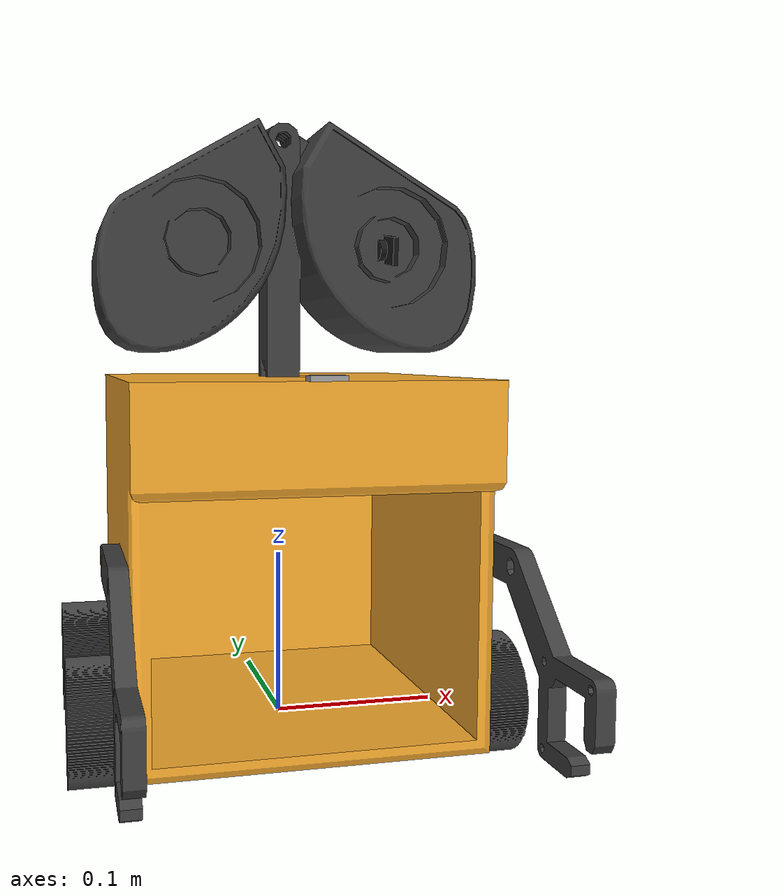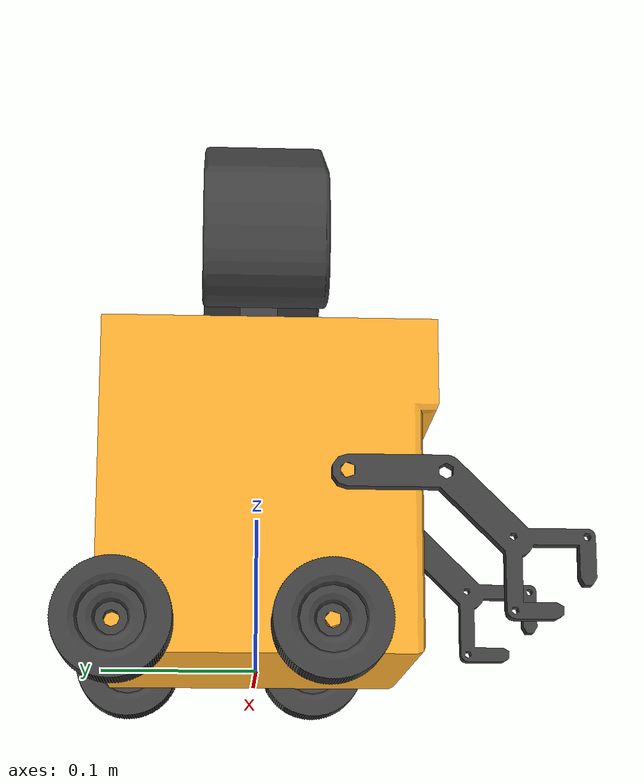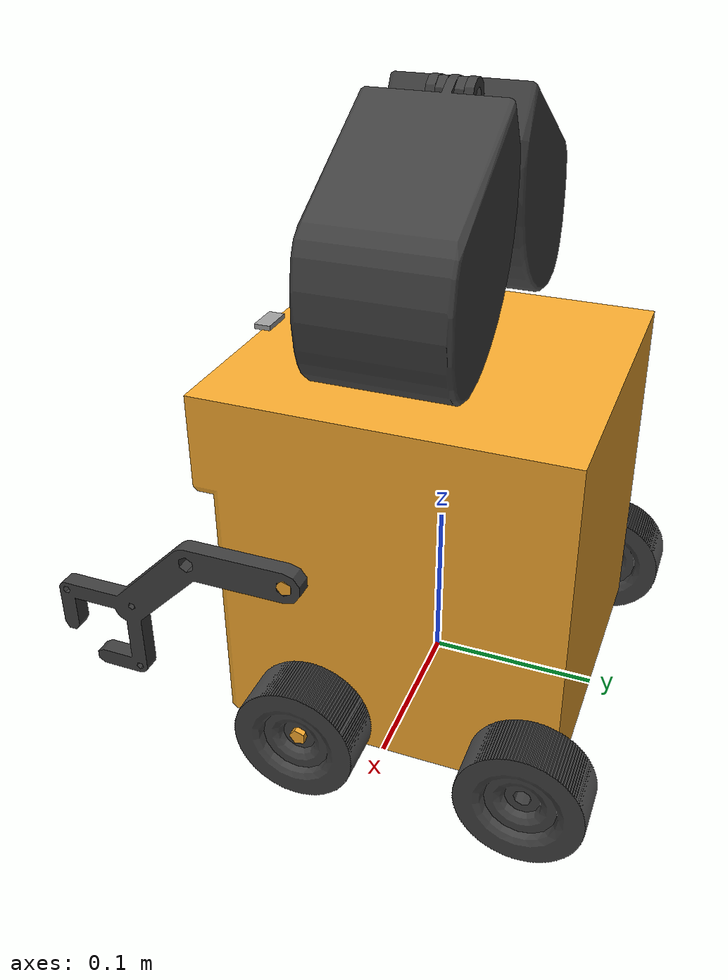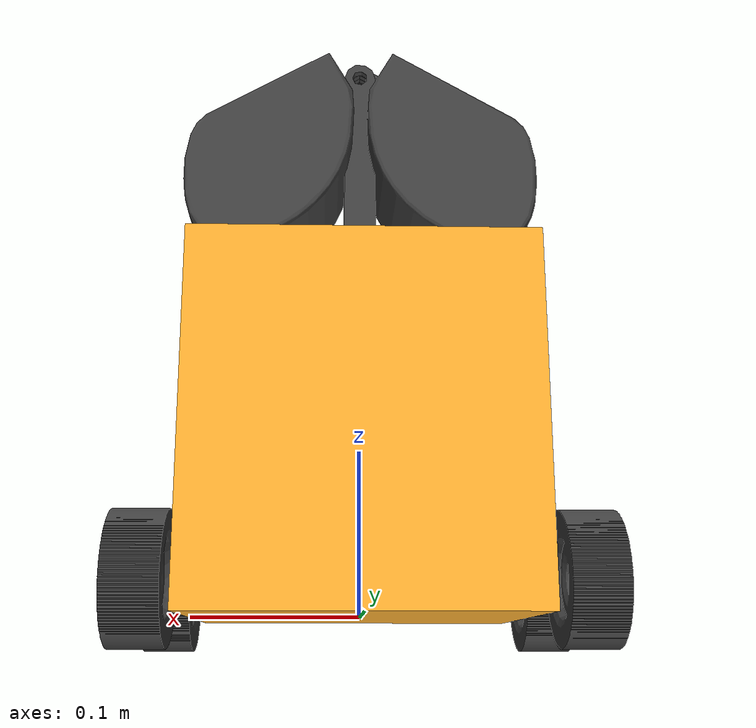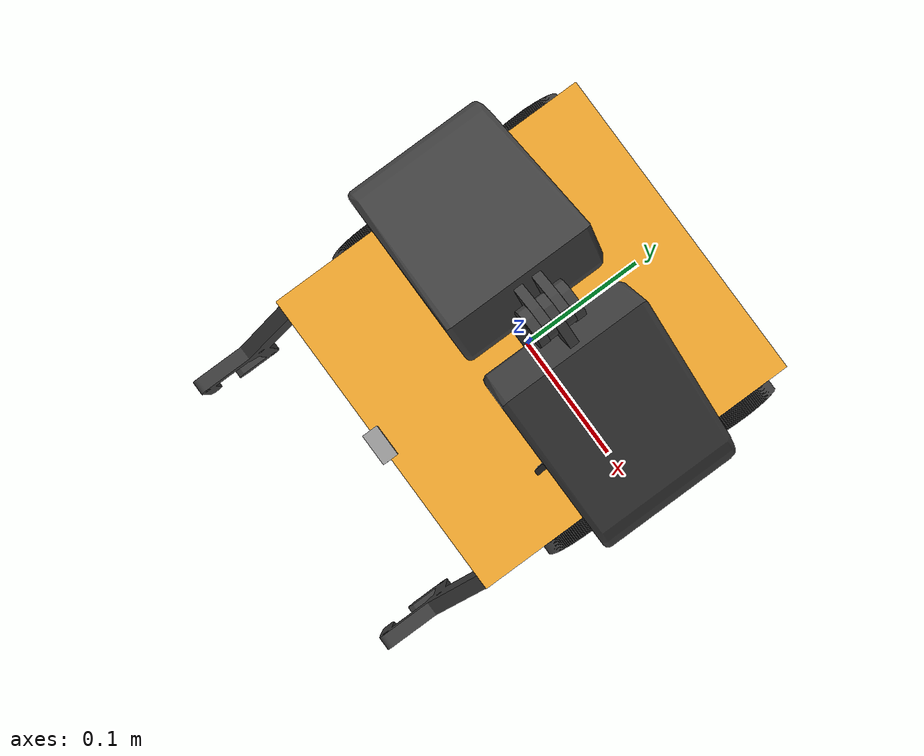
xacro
<?xml version="1.0" ?>
<robot name="sim" xmlns:xacro="http://www.ros.org/wiki/xacro">

<xacro:include filename="$(find sim_description)/urdf/materials.xacro" />
<xacro:include filename="$(find sim_description)/urdf/sensors.xacro" />
<xacro:include filename="$(find sim_description)/urdf/sim.gazebo" />
<link name="base_link">
  <inertial>
    <origin xyz="0 0.007854232303995057 0.12120278975860416" rpy="-0.3 0 0"/>
    <mass value="3.1148330063772516"/>
    <inertia ixx="0.032507" iyy="0.034335" izz="0.029521" ixy="-0.0" iyz="0.001867" ixz="0.0"/>
  </inertial>
  <visual name="visual_0">
    <origin xyz="-0.27 0 0" rpy="0 0 0"/>
    <geometry>
      <mesh filename="file://$(find sim_description)/meshes/__visual__base_link_715a4d03a5_0.stl" scale="0.001 0.001 0.001"/>
    </geometry>
    <material name="fusion_Paek__Beige__c3b53efd9f"/>
  </visual>
  <collision>
    <origin xyz="-0.27 0 0" rpy="0 0 0"/>
    <geometry>
      <mesh filename="file://$(find sim_description)/meshes/base_link.stl" scale="0.001 0.001 0.001"/>
    </geometry>
  </collision>
</link>

<link name="Button_Head_Small_Solid_Rivet_ASME_B18.1.1_-_3/8_x_1_1/4_Steel_Plain_1">
  <inertial>
    <origin xyz="3.3112401709445294e-13 0.009838851463327058 2.979646446243933e-09" rpy="0 0 0"/>
    <mass value="0.025973504992578146"/>
    <inertia ixx="4e-06" iyy="0.0" izz="4e-06" ixy="-0.0" iyz="-0.0" ixz="-0.0"/>
  </inertial>
  <visual name="visual_0">
    <origin xyz="-0.27 0.012358 -0.2" rpy="0 0 0"/>
    <geometry>
      <mesh filename="file://$(find sim_description)/meshes/__visual__Button_Head_Small_Solid_Rivet_ASME_B18.1.1_-_3_8_x_1_1_4_Steel_Plain_1_053bc43f51_0.stl" scale="0.001 0.001 0.001"/>
    </geometry>
    <material name="fusion_Steel___Satin_7dcf9b04aa"/>
  </visual>
  <collision>
    <origin xyz="-0.27 0.012358 -0.2" rpy="0 0 0"/>
    <geometry>
      <mesh filename="file://$(find sim_description)/meshes/Button_Head_Small_Solid_Rivet_ASME_B18.1.1_-_3_8_x_1_1_4_Steel_Plain_1.stl" scale="0.001 0.001 0.001"/>
    </geometry>
  </collision>
</link>

<link name="Wheel2_1">
  <inertial>
    <origin xyz="0 -3.4358904910797294e-07 -2.882384547153727e-07" rpy="0 0 0"/>
    <mass value="0.0946935065934851"/>
    <inertia ixx="6.8e-05" iyy="4e-05" izz="4e-05" ixy="0.0" iyz="-0.0" ixz="0.0"/>
  </inertial>
  <visual name="visual_0">
    <origin xyz="-0.39 0.042358 -0.017023" rpy="0 0 0"/>
    <geometry>
      <mesh filename="file://$(find sim_description)/meshes/__visual__Wheel2_1_6cc1698ccd_0.stl" scale="0.001 0.001 0.001"/>
    </geometry>
    <material name="fusion_Nylon_12__with_Formlabs_Fuse_1_3D_Printer__9b6938a61d"/>
  </visual>
  <collision>
    <origin xyz="-0.39 0.042358 -0.017023" rpy="0 0 0"/>
    <geometry>
      <mesh filename="file://$(find sim_description)/meshes/Wheel2_1.stl" scale="0.001 0.001 0.001"/>
    </geometry>
  </collision>
</link>

<link name="Wheels_1">
  <inertial>
    <origin xyz="0 -3.4358904910103405e-07 -2.882384547153727e-07" rpy="0 0 0"/>
    <mass value="0.0946935065934851"/>
    <inertia ixx="6.8e-05" iyy="4e-05" izz="4e-05" ixy="0.0" iyz="-0.0" ixz="0.0"/>
  </inertial>
  <visual name="visual_0">
    <origin xyz="-0.39 -0.057642 -0.017023" rpy="0 0 0"/>
    <geometry>
      <mesh filename="file://$(find sim_description)/meshes/__visual__Wheels_1_594b391ede_0.stl" scale="0.001 0.001 0.001"/>
    </geometry>
    <material name="fusion_Nylon_12__with_Formlabs_Fuse_1_3D_Printer__9b6938a61d"/>
  </visual>
  <collision>
    <origin xyz="-0.39 -0.057642 -0.017023" rpy="0 0 0"/>
    <geometry>
      <mesh filename="file://$(find sim_description)/meshes/Wheels_1.stl" scale="0.001 0.001 0.001"/>
    </geometry>
  </collision>
</link>

<link name="Wheels3_1">
  <inertial>
    <origin xyz="0 -3.4358904910797294e-07 -2.882384547153727e-07" rpy="0 0 0"/>
    <mass value="0.0946935065934851"/>
    <inertia ixx="6.8e-05" iyy="4e-05" izz="4e-05" ixy="0.0" iyz="-0.0" ixz="0.0"/>
  </inertial>
  <visual name="visual_0">
    <origin xyz="-0.143432 0.042358 -0.017023" rpy="0 0 0"/>
    <geometry>
      <mesh filename="file://$(find sim_description)/meshes/__visual__Wheels3_1_788b86b6ca_0.stl" scale="0.001 0.001 0.001"/>
    </geometry>
    <material name="fusion_Nylon_12__with_Formlabs_Fuse_1_3D_Printer__9b6938a61d"/>
  </visual>
  <collision>
    <origin xyz="-0.143432 0.042358 -0.017023" rpy="0 0 0"/>
    <geometry>
      <mesh filename="file://$(find sim_description)/meshes/Wheels3_1.stl" scale="0.001 0.001 0.001"/>
    </geometry>
  </collision>
</link>

<link name="Wheels4_1">
  <inertial>
    <origin xyz="0 -3.4358904910103405e-07 -2.882384547153727e-07" rpy="0 0 0"/>
    <mass value="0.0946935065934851"/>
    <inertia ixx="6.8e-05" iyy="4e-05" izz="4e-05" ixy="0.0" iyz="-0.0" ixz="0.0"/>
  </inertial>
  <visual name="visual_0">
    <origin xyz="-0.143432 -0.057642 -0.017023" rpy="0 0 0"/>
    <geometry>
      <mesh filename="file://$(find sim_description)/meshes/__visual__Wheels4_1_2e6ca671c6_0.stl" scale="0.001 0.001 0.001"/>
    </geometry>
    <material name="fusion_Nylon_12__with_Formlabs_Fuse_1_3D_Printer__9b6938a61d"/>
  </visual>
  <collision>
    <origin xyz="-0.143432 -0.057642 -0.017023" rpy="0 0 0"/>
    <geometry>
      <mesh filename="file://$(find sim_description)/meshes/Wheels4_1.stl" scale="0.001 0.001 0.001"/>
    </geometry>
  </collision>
</link>

<link name="Simple-Hand2_1">
  <inertial>
    <origin xyz="0.0050000000000000044 -0.07714337017356153 -0.02804693786141821" rpy="0 0 0"/>
    <mass value="0.037869332750711956"/>
    <inertia ixx="9.8e-05" iyy="3.1e-05" izz="6.8e-05" ixy="-0.0" iyz="-3.6e-05" ixz="0.0"/>
  </inertial>
  <visual name="visual_0">
    <origin xyz="-0.158 0.052358 -0.109854" rpy="0 0 0"/>
    <geometry>
      <mesh filename="file://$(find sim_description)/meshes/__visual__Simple-Hand2_1_7b7cf8c415_0.stl" scale="0.001 0.001 0.001"/>
    </geometry>
    <material name="fusion_Nylon_12__with_Formlabs_Fuse_1_3D_Printer__9b6938a61d"/>
  </visual>
  <collision>
    <origin xyz="-0.158 0.052358 -0.109854" rpy="0 0 0"/>
    <geometry>
      <mesh filename="file://$(find sim_description)/meshes/Simple-Hand2_1.stl" scale="0.001 0.001 0.001"/>
    </geometry>
  </collision>
</link>

<link name="Simple-Hand_1">
  <inertial>
    <origin xyz="-0.0050000000000000044 -0.07714337017356147 -0.02804693786141821" rpy="0 0 0"/>
    <mass value="0.037869332750711956"/>
    <inertia ixx="9.8e-05" iyy="3.1e-05" izz="6.8e-05" ixy="0.0" iyz="-3.6e-05" ixz="-0.0"/>
  </inertial>
  <visual name="visual_0">
    <origin xyz="-0.382 0.052358 -0.109854" rpy="0 0 0"/>
    <geometry>
      <mesh filename="file://$(find sim_description)/meshes/__visual__Simple-Hand_1_5e8c8bbd99_0.stl" scale="0.001 0.001 0.001"/>
    </geometry>
    <material name="fusion_Nylon_12__with_Formlabs_Fuse_1_3D_Printer__9b6938a61d"/>
  </visual>
  <collision>
    <origin xyz="-0.382 0.052358 -0.109854" rpy="0 0 0"/>
    <geometry>
      <mesh filename="file://$(find sim_description)/meshes/Simple-Hand_1.stl" scale="0.001 0.001 0.001"/>
    </geometry>
  </collision>
</link>

<link name="Neck_1">
  <inertial>
    <origin xyz="-2.905723994750531e-10 0.007499656404584607 0.07496724373184233" rpy="0 0 0"/>
    <mass value="0.07029321520135141"/>
    <inertia ixx="0.000123" iyy="0.000121" izz="6e-06" ixy="0.0" iyz="-0.0" ixz="0.0"/>
  </inertial>
  <visual name="visual_0">
    <origin xyz="-0.27 0.007358 -0.2" rpy="0 0 0"/>
    <geometry>
      <mesh filename="file://$(find sim_description)/meshes/__visual__Neck_1_34c932d70d_0.stl" scale="0.001 0.001 0.001"/>
    </geometry>
    <material name="fusion_Nylon_12__with_Formlabs_Fuse_1_3D_Printer__9b6938a61d"/>
  </visual>
  <collision>
    <origin xyz="-0.27 0.007358 -0.2" rpy="0 0 0"/>
    <geometry>
      <mesh filename="file://$(find sim_description)/meshes/Neck_1.stl" scale="0.001 0.001 0.001"/>
    </geometry>
  </collision>
</link>

<link name="Eye-Piece_1">
  <inertial>
    <origin xyz="-0.07165352361085467 -0.008032356043059708 -0.047504700230867725" rpy="0 0 0"/>
    <mass value="0.736870529138454"/>
    <inertia ixx="0.000921" iyy="0.001304" izz="0.001096" ixy="-4e-06" iyz="-2e-06" ixz="-0.000273"/>
  </inertial>
  <visual name="visual_0">
    <origin xyz="-0.27 -0.007642 -0.349854" rpy="0 0 0"/>
    <geometry>
      <mesh filename="file://$(find sim_description)/meshes/__visual__Eye-Piece_1_6ef455a09f_0.stl" scale="0.001 0.001 0.001"/>
    </geometry>
    <material name="fusion_Nylon_12__with_Formlabs_Fuse_1_3D_Printer__9b6938a61d"/>
  </visual>
  <collision>
    <origin xyz="-0.27 -0.007642 -0.349854" rpy="0 0 0"/>
    <geometry>
      <mesh filename="file://$(find sim_description)/meshes/Eye-Piece_1.stl" scale="0.001 0.001 0.001"/>
    </geometry>
  </collision>
</link>

<link name="Eye-Piece_other_1">
  <inertial>
    <origin xyz="0.0716609311664021 0.0019831268115849073 -0.04758084718356914" rpy="0 0 0"/>
    <mass value="0.7346504973882518"/>
    <inertia ixx="0.000916" iyy="0.001291" izz="0.001087" ixy="-0.0" iyz="-0.0" ixz="0.000267"/>
  </inertial>
  <visual name="visual_0">
    <origin xyz="-0.27 0.002358 -0.349854" rpy="0 0 0"/>
    <geometry>
      <mesh filename="file://$(find sim_description)/meshes/__visual__Eye-Piece_other_1_aa47e234cb_0.stl" scale="0.001 0.001 0.001"/>
    </geometry>
    <material name="fusion_Nylon_12__with_Formlabs_Fuse_1_3D_Printer__9b6938a61d"/>
  </visual>
  <collision>
    <origin xyz="-0.27 0.002358 -0.349854" rpy="0 0 0"/>
    <geometry>
      <mesh filename="file://$(find sim_description)/meshes/Eye-Piece_other_1.stl" scale="0.001 0.001 0.001"/>
    </geometry>
  </collision>
</link>

<link name="eye_CAM_1">
  <inertial>
    <origin xyz="-2.8683158786846352e-05 -0.00235881887170189 -0.0001060403257386322" rpy="0 0 0"/>
    <mass value="0.0026282548716325452"/>
    <inertia ixx="0.0" iyy="0.0" izz="0.0" ixy="-0.0" iyz="-0.0" ixz="0.0"/>
  </inertial>
  <visual name="visual_0">
    <origin xyz="-0.342218 0.032358 -0.302551" rpy="0 0 0"/>
    <geometry>
      <mesh filename="file://$(find sim_description)/meshes/__visual__eye_CAM_1_5a890c16d0_0.stl" scale="0.001 0.001 0.001"/>
    </geometry>
    <material name="fusion_Plastic___Glossy__Black__e2e6ed1680"/>
  </visual>
  <collision>
    <origin xyz="-0.342218 0.032358 -0.302551" rpy="0 0 0"/>
    <geometry>
      <mesh filename="file://$(find sim_description)/meshes/eye_CAM_1.stl" scale="0.001 0.001 0.001"/>
    </geometry>
  </collision>
</link>

<link name="motion_IMU_1">
  <inertial>
    <origin xyz="0.0 0.0 0.0015000000000000013" rpy="0 0 0"/>
    <mass value="0.004710000140368951"/>
    <inertia ixx="0.0" iyy="0.0" izz="0.0" ixy="0.0" iyz="-0.0" ixz="0.0"/>
  </inertial>
  <visual name="visual_0">
    <origin xyz="-0.27 0.11 -0.21" rpy="0 0 0"/>
    <geometry>
      <mesh filename="file://$(find sim_description)/meshes/__visual__motion_IMU_1_9386f0f59d_0.stl" scale="0.001 0.001 0.001"/>
    </geometry>
    <material name="fusion_Steel___Satin_7dcf9b04aa"/>
  </visual>
  <collision>
    <origin xyz="-0.27 0.11 -0.21" rpy="0 0 0"/>
    <geometry>
      <mesh filename="file://$(find sim_description)/meshes/motion_IMU_1.stl" scale="0.001 0.001 0.001"/>
    </geometry>
  </collision>
</link>

<joint name="Rigid 5" type="fixed">
  <origin xyz="0 -0.005 0.0" rpy="0 0 0"/>
  <parent link="Neck_1"/>
  <child link="Button_Head_Small_Solid_Rivet_ASME_B18.1.1_-_3/8_x_1_1/4_Steel_Plain_1"/>
</joint>

<joint name="RF_Whe" type="continuous">
  <origin xyz="0.12 -0.042358 0.017023" rpy="0 0 0"/>
  <parent link="base_link"/>
  <child link="Wheel2_1"/>
  <axis xyz="1.0 0.0 0.0"/>
</joint>

<joint name="RB_Whe" type="continuous">
  <origin xyz="0.12 0.087642 0.017023" rpy="0 0 0"/>
  <parent link="base_link"/>
  <child link="Wheels_1"/>
  <axis xyz="1.0 0.0 0.0"/>
</joint>

<joint name="LF_Whe" type="continuous">
  <origin xyz="-0.127 -0.042358 0.017023" rpy="0 0 0"/>
  <parent link="base_link"/>
  <child link="Wheels3_1"/>
  <axis xyz="-1.0 0.0 0.0"/>
</joint>

<joint name="LB_Whe" type="continuous">
  <origin xyz="-0.127 0.087642 0.017023" rpy="0 0 0"/>
  <parent link="base_link"/>
  <child link="Wheels4_1"/>
  <axis xyz="-1.0 0.0 0.0"/>
</joint>

<joint name="LH" type="revolute">
  <origin xyz="-0.112 -0.052358 0.109854" rpy="0 0 0"/>
  <parent link="base_link"/>
  <child link="Simple-Hand2_1"/>
  <axis xyz="-1.0 0.0 0.0"/>
  <limit upper="1.570796" lower="-0.436332" effort="100" velocity="100"/>
</joint>

<joint name="RH" type="revolute">
  <origin xyz="0.112 -0.052358 0.109854" rpy="0 0 0"/>
  <parent link="base_link"/>
  <child link="Simple-Hand_1"/>
  <axis xyz="1.0 0.0 0.0"/>
  <limit upper="0.523599" lower="-1.570796" effort="100" velocity="100"/>
</joint>

<joint name="Ne" type="revolute">
  <origin xyz="0 -0.007358 0.2" rpy="0 0 0"/>
  <parent link="base_link"/>
  <child link="Neck_1"/>
  <axis xyz="0.0 -1.0 0.0"/>
  <limit upper="0.698132" lower="-0.698132" effort="100" velocity="100"/>
</joint>

<joint name="Le" type="revolute">
  <origin xyz="0 0.015 0.149854" rpy="0 0 0"/>
  <parent link="Neck_1"/>
  <child link="Eye-Piece_1"/>
  <axis xyz="0.0 -1.0 0.0"/>
  <limit upper="0.261799" lower="0.261799" effort="100" velocity="100"/>
</joint>

<joint name="Re" type="revolute">
  <origin xyz="0 -0.01 0.0" rpy="0 0 0"/>
  <parent link="Eye-Piece_1"/>
  <child link="Eye-Piece_other_1"/>
  <axis xyz="0.0 1.0 0.0"/>
  <limit upper="0.523599" lower="0.523599" effort="100" velocity="100"/>
</joint>

<joint name="Rigid 34" type="fixed">
  <origin xyz="0.07338 -0.03 -0.047303" rpy="0.3 -0.1 -83.2"/>
  <parent link="Eye-Piece_other_1"/>
  <child link="eye_CAM_1"/>
</joint>

<joint name="Rigid 35" type="fixed">
  <origin xyz="0 -0.11 0.21" rpy="0 0 0"/>
  <parent link="base_link"/>
  <child link="motion_IMU_1"/>
</joint>

</robot>

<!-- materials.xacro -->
<robot name="sim" xmlns:xacro="http://www.ros.org/wiki/xacro"><material name="fusion_Nylon_12__with_Formlabs_Fuse_1_3D_Printer__9b6938a61d"><color rgba="0.24705882 0.24705882 0.24705882 1" /></material><material name="fusion_Steel___Satin_7dcf9b04aa"><color rgba="0.62352941 0.62352941 0.62352941 1" /></material><material name="fusion_Paek__Beige__c3b53efd9f"><color rgba="0.97647059 0.6745098 0.18431373 1" /></material><material name="fusion_Plastic___Glossy__Black__e2e6ed1680"><color rgba="0.098039216 0.098039216 0.098039216 1" /></material></robot>
